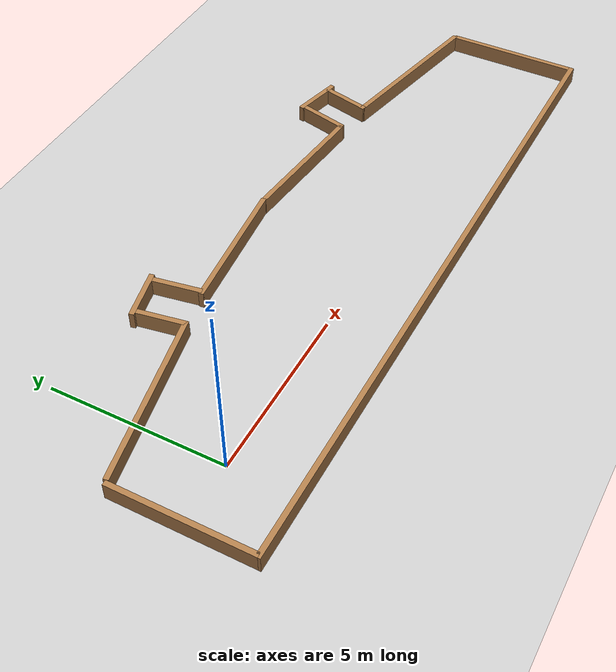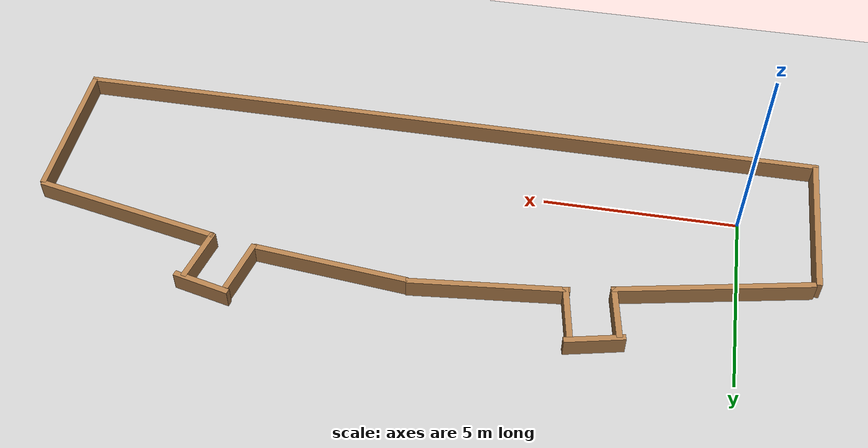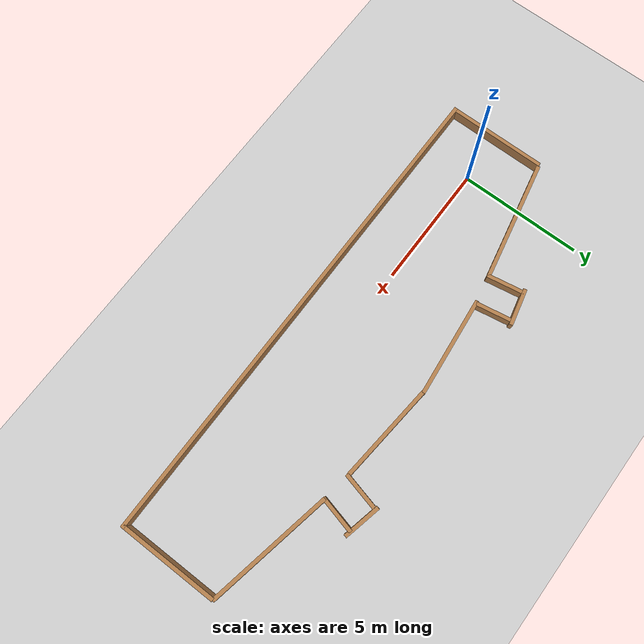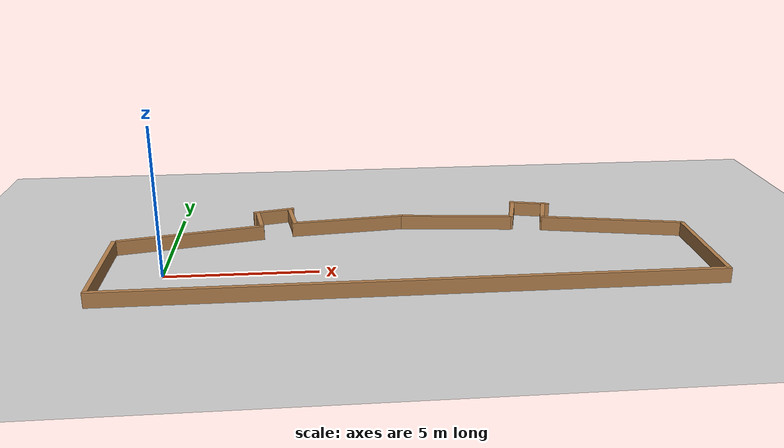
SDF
<sdf version='1.6'>
  <world name='default'>
    <!-- A global light source -->
    <include>
      <uri>model://sun</uri>
    </include>

    <!-- A ground plane -->
    <include>
      <uri>model://ground_plane</uri>
    </include>

    <physics type="ode">
      <real_time_update_rate>1000.0</real_time_update_rate>
      <max_step_size>0.001</max_step_size>
      <real_time_factor>1</real_time_factor>
      <ode>
        <solver>
          <type>quick</type>
          <iters>150</iters>
          <precon_iters>0</precon_iters>
          <sor>1.400000</sor>
          <use_dynamic_moi_rescaling>1</use_dynamic_moi_rescaling>
        </solver>
        <constraints>
          <cfm>0.00001</cfm>
          <erp>0.2</erp>
          <contact_max_correcting_vel>2000.000000</contact_max_correcting_vel>
          <contact_surface_layer>0.01000</contact_surface_layer>
        </constraints>
      </ode>
    </physics>

    <!-- Load world -->
    <include>
      <uri>model://sarl_map</uri>
    </include>

    <scene>
      <ambient>0.4 0.4 0.4 1</ambient>
      <background>0.7 0.7 0.7 1</background>
      <shadows>true</shadows>
    </scene>

    <gui fullscreen='0'>
      <camera name='user_camera'>
        <pose>0.0 0.0 17.0 0 1.5708 0</pose>
        <view_controller>orbit</view_controller>
      </camera>
    </gui>
  </world>
</sdf>

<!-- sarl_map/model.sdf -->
<sdf version='1.6'>
  <model name='sarl_map'>
    <link name='Wall_0'>
      <pose frame=''>0.6 2.5 0 0 -0 0.2</pose>
      <self_collide>0</self_collide>
      <enable_wind>0</enable_wind>
      <kinematic>0</kinematic>
      <gravity>1</gravity>
      <inertial>
        <mass>1</mass>
        <pose frame=''>0 0 0 0 -0 0</pose>
        <inertia>
          <ixx>1</ixx>
          <ixy>0</ixy>
          <ixz>0</ixz>
          <iyy>1</iyy>
          <iyz>0</iyz>
          <izz>1</izz>
        </inertia>
      </inertial>
      <visual name='Wall_0_Visual'>
        <pose frame=''>0 0 0.25 0 -0 0</pose>
        <geometry>
          <box>
            <size>5 0.15 0.5</size>
          </box>
        </geometry>
        <material>
          <script>
            <uri>file://media/materials/scripts/gazebo.material</uri>
            <name>Gazebo/Wood</name>
          </script>
          <ambient>1 1 1 1</ambient>
          <shader type='vertex'>
            <normal_map>__default__</normal_map>
          </shader>
          <diffuse>1 1 1 1</diffuse>
          <specular>0.2 0.2 0.2 1</specular>
          <emissive>0 0 0 1</emissive>
        </material>
        <transparency>0</transparency>
        <cast_shadows>1</cast_shadows>
      </visual>
      <collision name='Wall_0_Collision'>
        <laser_retro>0</laser_retro>
        <max_contacts>10</max_contacts>
        <pose frame=''>0 0 0.25 0 -0 0</pose>
        <geometry>
          <box>
            <size>5 0.15 0.5</size>
          </box>
        </geometry>
        <surface>
          <friction>
            <ode>
              <mu>1</mu>
              <mu2>1</mu2>
              <fdir1>0 0 0</fdir1>
              <slip1>0</slip1>
              <slip2>0</slip2>
            </ode>
            <torsional>
              <coefficient>1</coefficient>
              <patch_radius>0</patch_radius>
              <surface_radius>0</surface_radius>
              <use_patch_radius>1</use_patch_radius>
              <ode>
                <slip>0</slip>
              </ode>
            </torsional>
          </friction>
          <bounce>
            <restitution_coefficient>0</restitution_coefficient>
            <threshold>1e+06</threshold>
          </bounce>
          <contact>
            <collide_without_contact>0</collide_without_contact>
            <collide_without_contact_bitmask>1</collide_without_contact_bitmask>
            <collide_bitmask>1</collide_bitmask>
            <ode>
              <soft_cfm>0</soft_cfm>
              <soft_erp>0.2</soft_erp>
              <kp>1e+13</kp>
              <kd>1</kd>
              <max_vel>0.01</max_vel>
              <min_depth>0</min_depth>
            </ode>
            <bullet>
              <split_impulse>1</split_impulse>
              <split_impulse_penetration_threshold>-0.01</split_impulse_penetration_threshold>
              <soft_cfm>0</soft_cfm>
              <soft_erp>0.2</soft_erp>
              <kp>1e+13</kp>
              <kd>1</kd>
            </bullet>
          </contact>
        </surface>
      </collision>
    </link>
    <link name='Wall_0_clone'>
      <pose frame=''>6.02566 3.38497 0 0 -0 0.1</pose>
      <self_collide>0</self_collide>
      <enable_wind>0</enable_wind>
      <kinematic>0</kinematic>
      <gravity>1</gravity>
      <inertial>
        <mass>1</mass>
        <pose frame=''>0 0 0 0 -0 0</pose>
        <inertia>
          <ixx>1</ixx>
          <ixy>0</ixy>
          <ixz>0</ixz>
          <iyy>1</iyy>
          <iyz>0</iyz>
          <izz>1</izz>
        </inertia>
      </inertial>
      <visual name='Wall_0_Visual'>
        <pose frame=''>0 0 0.25 0 -0 0</pose>
        <geometry>
          <box>
            <size>4 0.15 0.5</size>
          </box>
        </geometry>
        <material>
          <script>
            <uri>file://media/materials/scripts/gazebo.material</uri>
            <name>Gazebo/Wood</name>
          </script>
          <ambient>1 1 1 1</ambient>
          <shader type='vertex'>
            <normal_map>__default__</normal_map>
          </shader>
          <diffuse>1 1 1 1</diffuse>
          <specular>0.2 0.2 0.2 1</specular>
          <emissive>0 0 0 1</emissive>
        </material>
        <transparency>0</transparency>
        <cast_shadows>1</cast_shadows>
      </visual>
      <collision name='Wall_0_Collision'>
        <laser_retro>0</laser_retro>
        <max_contacts>10</max_contacts>
        <pose frame=''>0 0 0.25 0 -0 0</pose>
        <geometry>
          <box>
            <size>4 0.15 0.5</size>
          </box>
        </geometry>
        <surface>
          <friction>
            <ode>
              <mu>1</mu>
              <mu2>1</mu2>
              <fdir1>0 0 0</fdir1>
              <slip1>0</slip1>
              <slip2>0</slip2>
            </ode>
            <torsional>
              <coefficient>1</coefficient>
              <patch_radius>0</patch_radius>
              <surface_radius>0</surface_radius>
              <use_patch_radius>1</use_patch_radius>
              <ode>
                <slip>0</slip>
              </ode>
            </torsional>
          </friction>
          <bounce>
            <restitution_coefficient>0</restitution_coefficient>
            <threshold>1e+06</threshold>
          </bounce>
          <contact>
            <collide_without_contact>0</collide_without_contact>
            <collide_without_contact_bitmask>1</collide_without_contact_bitmask>
            <collide_bitmask>1</collide_bitmask>
            <ode>
              <soft_cfm>0</soft_cfm>
              <soft_erp>0.2</soft_erp>
              <kp>1e+13</kp>
              <kd>1</kd>
              <max_vel>0.01</max_vel>
              <min_depth>0</min_depth>
            </ode>
            <bullet>
              <split_impulse>1</split_impulse>
              <split_impulse_penetration_threshold>-0.01</split_impulse_penetration_threshold>
              <soft_cfm>0</soft_cfm>
              <soft_erp>0.2</soft_erp>
              <kp>1e+13</kp>
              <kd>1</kd>
            </bullet>
          </contact>
        </surface>
      </collision>
    </link>
    <link name='Wall_0_clone_clone'>
      <pose frame=''>15.5 2.5 0 0 0 -0.2</pose>
      <self_collide>0</self_collide>
      <enable_wind>0</enable_wind>
      <kinematic>0</kinematic>
      <gravity>1</gravity>
      <inertial>
        <mass>1</mass>
        <pose frame=''>0 0 0 0 -0 0</pose>
        <inertia>
          <ixx>1</ixx>
          <ixy>0</ixy>
          <ixz>0</ixz>
          <iyy>1</iyy>
          <iyz>0</iyz>
          <izz>1</izz>
        </inertia>
      </inertial>
      <visual name='Wall_0_Visual'>
        <pose frame=''>0 0 0.25 0 -0 0</pose>
        <geometry>
          <box>
            <size>5 0.15 0.5</size>
          </box>
        </geometry>
        <material>
          <script>
            <uri>file://media/materials/scripts/gazebo.material</uri>
            <name>Gazebo/Wood</name>
          </script>
          <ambient>1 1 1 1</ambient>
          <shader type='vertex'>
            <normal_map>__default__</normal_map>
          </shader>
          <diffuse>1 1 1 1</diffuse>
          <specular>0.2 0.2 0.2 1</specular>
          <emissive>0 0 0 1</emissive>
        </material>
        <transparency>0</transparency>
        <cast_shadows>1</cast_shadows>
      </visual>
      <collision name='Wall_0_Collision'>
        <laser_retro>0</laser_retro>
        <max_contacts>10</max_contacts>
        <pose frame=''>0 0 0.25 0 -0 0</pose>
        <geometry>
          <box>
            <size>5 0.15 0.5</size>
          </box>
        </geometry>
        <surface>
          <friction>
            <ode>
              <mu>1</mu>
              <mu2>1</mu2>
              <fdir1>0 0 0</fdir1>
              <slip1>0</slip1>
              <slip2>0</slip2>
            </ode>
            <torsional>
              <coefficient>1</coefficient>
              <patch_radius>0</patch_radius>
              <surface_radius>0</surface_radius>
              <use_patch_radius>1</use_patch_radius>
              <ode>
                <slip>0</slip>
              </ode>
            </torsional>
          </friction>
          <bounce>
            <restitution_coefficient>0</restitution_coefficient>
            <threshold>1e+06</threshold>
          </bounce>
          <contact>
            <collide_without_contact>0</collide_without_contact>
            <collide_without_contact_bitmask>1</collide_without_contact_bitmask>
            <collide_bitmask>1</collide_bitmask>
            <ode>
              <soft_cfm>0</soft_cfm>
              <soft_erp>0.2</soft_erp>
              <kp>1e+13</kp>
              <kd>1</kd>
              <max_vel>0.01</max_vel>
              <min_depth>0</min_depth>
            </ode>
            <bullet>
              <split_impulse>1</split_impulse>
              <split_impulse_penetration_threshold>-0.01</split_impulse_penetration_threshold>
              <soft_cfm>0</soft_cfm>
              <soft_erp>0.2</soft_erp>
              <kp>1e+13</kp>
              <kd>1</kd>
            </bullet>
          </contact>
        </surface>
      </collision>
    </link>
    <link name='Wall_0_clone_clone_0'>
      <pose frame=''>9.95938 3.36639 0 0 0 -0.1</pose>
      <self_collide>0</self_collide>
      <enable_wind>0</enable_wind>
      <kinematic>0</kinematic>
      <gravity>1</gravity>
      <inertial>
        <mass>1</mass>
        <pose frame=''>0 0 0 0 -0 0</pose>
        <inertia>
          <ixx>1</ixx>
          <ixy>0</ixy>
          <ixz>0</ixz>
          <iyy>1</iyy>
          <iyz>0</iyz>
          <izz>1</izz>
        </inertia>
      </inertial>
      <visual name='Wall_0_Visual'>
        <pose frame=''>0 0 0.25 0 -0 0</pose>
        <geometry>
          <box>
            <size>4 0.15 0.5</size>
          </box>
        </geometry>
        <material>
          <script>
            <uri>file://media/materials/scripts/gazebo.material</uri>
            <name>Gazebo/Wood</name>
          </script>
          <ambient>1 1 1 1</ambient>
          <shader type='vertex'>
            <normal_map>__default__</normal_map>
          </shader>
          <diffuse>1 1 1 1</diffuse>
          <specular>0.2 0.2 0.2 1</specular>
          <emissive>0 0 0 1</emissive>
        </material>
        <transparency>0</transparency>
        <cast_shadows>1</cast_shadows>
      </visual>
      <collision name='Wall_0_Collision'>
        <laser_retro>0</laser_retro>
        <max_contacts>10</max_contacts>
        <pose frame=''>0 0 0.25 0 -0 0</pose>
        <geometry>
          <box>
            <size>4 0.15 0.5</size>
          </box>
        </geometry>
        <surface>
          <friction>
            <ode>
              <mu>1</mu>
              <mu2>1</mu2>
              <fdir1>0 0 0</fdir1>
              <slip1>0</slip1>
              <slip2>0</slip2>
            </ode>
            <torsional>
              <coefficient>1</coefficient>
              <patch_radius>0</patch_radius>
              <surface_radius>0</surface_radius>
              <use_patch_radius>1</use_patch_radius>
              <ode>
                <slip>0</slip>
              </ode>
            </torsional>
          </friction>
          <bounce>
            <restitution_coefficient>0</restitution_coefficient>
            <threshold>1e+06</threshold>
          </bounce>
          <contact>
            <collide_without_contact>0</collide_without_contact>
            <collide_without_contact_bitmask>1</collide_without_contact_bitmask>
            <collide_bitmask>1</collide_bitmask>
            <ode>
              <soft_cfm>0</soft_cfm>
              <soft_erp>0.2</soft_erp>
              <kp>1e+13</kp>
              <kd>1</kd>
              <max_vel>0.01</max_vel>
              <min_depth>0</min_depth>
            </ode>
            <bullet>
              <split_impulse>1</split_impulse>
              <split_impulse_penetration_threshold>-0.01</split_impulse_penetration_threshold>
              <soft_cfm>0</soft_cfm>
              <soft_erp>0.2</soft_erp>
              <kp>1e+13</kp>
              <kd>1</kd>
            </bullet>
          </contact>
        </surface>
      </collision>
    </link>
    <link name='Wall_0_clone_clone_0_clone'>
      <pose frame=''>4.03095 3.86036 0 0 0 -1.40434</pose>
      <self_collide>0</self_collide>
      <enable_wind>0</enable_wind>
      <kinematic>0</kinematic>
      <gravity>1</gravity>
      <inertial>
        <mass>0.371932</mass>
        <pose frame=''>0 0 0 0 -0 0</pose>
        <inertia>
          <ixx>0.00844595</ixx>
          <ixy>0</ixy>
          <ixz>0</ixz>
          <iyy>0.0763497</iyy>
          <iyz>0</iyz>
          <izz>0.0692985</izz>
        </inertia>
      </inertial>
      <visual name='Wall_0_Visual'>
        <pose frame=''>0 0 0.25 0 -0 0</pose>
        <geometry>
          <box>
            <size>1.48773 0.15 0.5</size>
          </box>
        </geometry>
        <material>
          <script>
            <uri>file://media/materials/scripts/gazebo.material</uri>
            <name>Gazebo/Wood</name>
          </script>
          <ambient>1 1 1 1</ambient>
          <shader type='vertex'>
            <normal_map>__default__</normal_map>
          </shader>
          <diffuse>1 1 1 1</diffuse>
          <specular>0.2 0.2 0.2 1</specular>
          <emissive>0 0 0 1</emissive>
        </material>
        <transparency>0</transparency>
        <cast_shadows>1</cast_shadows>
      </visual>
      <collision name='Wall_0_Collision'>
        <laser_retro>0</laser_retro>
        <max_contacts>10</max_contacts>
        <pose frame=''>0 0 0.25 0 -0 0</pose>
        <geometry>
          <box>
            <size>1.48773 0.15 0.5</size>
          </box>
        </geometry>
        <surface>
          <friction>
            <ode>
              <mu>1</mu>
              <mu2>1</mu2>
              <fdir1>0 0 0</fdir1>
              <slip1>0</slip1>
              <slip2>0</slip2>
            </ode>
            <torsional>
              <coefficient>1</coefficient>
              <patch_radius>0</patch_radius>
              <surface_radius>0</surface_radius>
              <use_patch_radius>1</use_patch_radius>
              <ode>
                <slip>0</slip>
              </ode>
            </torsional>
          </friction>
          <bounce>
            <restitution_coefficient>0</restitution_coefficient>
            <threshold>1e+06</threshold>
          </bounce>
          <contact>
            <collide_without_contact>0</collide_without_contact>
            <collide_without_contact_bitmask>1</collide_without_contact_bitmask>
            <collide_bitmask>1</collide_bitmask>
            <ode>
              <soft_cfm>0</soft_cfm>
              <soft_erp>0.2</soft_erp>
              <kp>1e+13</kp>
              <kd>1</kd>
              <max_vel>0.01</max_vel>
              <min_depth>0</min_depth>
            </ode>
            <bullet>
              <split_impulse>1</split_impulse>
              <split_impulse_penetration_threshold>-0.01</split_impulse_penetration_threshold>
              <soft_cfm>0</soft_cfm>
              <soft_erp>0.2</soft_erp>
              <kp>1e+13</kp>
              <kd>1</kd>
            </bullet>
          </contact>
        </surface>
      </collision>
    </link>
    <link name='Wall_0_clone_clone_0_clone_clone'>
      <pose frame=''>2.87095 3.66233 0 0 0 -1.40434</pose>
      <self_collide>0</self_collide>
      <enable_wind>0</enable_wind>
      <kinematic>0</kinematic>
      <gravity>1</gravity>
      <inertial>
        <mass>0.371932</mass>
        <pose frame=''>0 0 0 0 -0 0</pose>
        <inertia>
          <ixx>0.00844595</ixx>
          <ixy>0</ixy>
          <ixz>0</ixz>
          <iyy>0.0763497</iyy>
          <iyz>0</iyz>
          <izz>0.0692985</izz>
        </inertia>
      </inertial>
      <visual name='Wall_0_Visual'>
        <pose frame=''>0 0 0.25 0 -0 0</pose>
        <geometry>
          <box>
            <size>1.48773 0.15 0.5</size>
          </box>
        </geometry>
        <material>
          <script>
            <uri>file://media/materials/scripts/gazebo.material</uri>
            <name>Gazebo/Wood</name>
          </script>
          <ambient>1 1 1 1</ambient>
          <shader type='vertex'>
            <normal_map>__default__</normal_map>
          </shader>
          <diffuse>1 1 1 1</diffuse>
          <specular>0.2 0.2 0.2 1</specular>
          <emissive>0 0 0 1</emissive>
        </material>
        <transparency>0</transparency>
        <cast_shadows>1</cast_shadows>
      </visual>
      <collision name='Wall_0_Collision'>
        <laser_retro>0</laser_retro>
        <max_contacts>10</max_contacts>
        <pose frame=''>0 0 0.25 0 -0 0</pose>
        <geometry>
          <box>
            <size>1.48773 0.15 0.5</size>
          </box>
        </geometry>
        <surface>
          <friction>
            <ode>
              <mu>1</mu>
              <mu2>1</mu2>
              <fdir1>0 0 0</fdir1>
              <slip1>0</slip1>
              <slip2>0</slip2>
            </ode>
            <torsional>
              <coefficient>1</coefficient>
              <patch_radius>0</patch_radius>
              <surface_radius>0</surface_radius>
              <use_patch_radius>1</use_patch_radius>
              <ode>
                <slip>0</slip>
              </ode>
            </torsional>
          </friction>
          <bounce>
            <restitution_coefficient>0</restitution_coefficient>
            <threshold>1e+06</threshold>
          </bounce>
          <contact>
            <collide_without_contact>0</collide_without_contact>
            <collide_without_contact_bitmask>1</collide_without_contact_bitmask>
            <collide_bitmask>1</collide_bitmask>
            <ode>
              <soft_cfm>0</soft_cfm>
              <soft_erp>0.2</soft_erp>
              <kp>1e+13</kp>
              <kd>1</kd>
              <max_vel>0.01</max_vel>
              <min_depth>0</min_depth>
            </ode>
            <bullet>
              <split_impulse>1</split_impulse>
              <split_impulse_penetration_threshold>-0.01</split_impulse_penetration_threshold>
              <soft_cfm>0</soft_cfm>
              <soft_erp>0.2</soft_erp>
              <kp>1e+13</kp>
              <kd>1</kd>
            </bullet>
          </contact>
        </surface>
      </collision>
    </link>
    <link name='Wall_0_clone_clone_0_clone_clone_clone'>
      <pose frame=''>3.32345 4.53022 0 0 0 -2.91601</pose>
      <self_collide>0</self_collide>
      <enable_wind>0</enable_wind>
      <kinematic>0</kinematic>
      <gravity>1</gravity>
      <inertial>
        <mass>0.371932</mass>
        <pose frame=''>0 0 0 0 -0 0</pose>
        <inertia>
          <ixx>0.00844595</ixx>
          <ixy>0</ixy>
          <ixz>0</ixz>
          <iyy>0.0763497</iyy>
          <iyz>0</iyz>
          <izz>0.0692985</izz>
        </inertia>
      </inertial>
      <visual name='Wall_0_Visual'>
        <pose frame=''>0 0 0.25 0 -0 0</pose>
        <geometry>
          <box>
            <size>1.48773 0.15 0.5</size>
          </box>
        </geometry>
        <material>
          <script>
            <uri>file://media/materials/scripts/gazebo.material</uri>
            <name>Gazebo/Wood</name>
          </script>
          <ambient>1 1 1 1</ambient>
          <shader type='vertex'>
            <normal_map>__default__</normal_map>
          </shader>
          <diffuse>1 1 1 1</diffuse>
          <specular>0.2 0.2 0.2 1</specular>
          <emissive>0 0 0 1</emissive>
        </material>
        <transparency>0</transparency>
        <cast_shadows>1</cast_shadows>
      </visual>
      <collision name='Wall_0_Collision'>
        <laser_retro>0</laser_retro>
        <max_contacts>10</max_contacts>
        <pose frame=''>0 0 0.25 0 -0 0</pose>
        <geometry>
          <box>
            <size>1.48773 0.15 0.5</size>
          </box>
        </geometry>
        <surface>
          <friction>
            <ode>
              <mu>1</mu>
              <mu2>1</mu2>
              <fdir1>0 0 0</fdir1>
              <slip1>0</slip1>
              <slip2>0</slip2>
            </ode>
            <torsional>
              <coefficient>1</coefficient>
              <patch_radius>0</patch_radius>
              <surface_radius>0</surface_radius>
              <use_patch_radius>1</use_patch_radius>
              <ode>
                <slip>0</slip>
              </ode>
            </torsional>
          </friction>
          <bounce>
            <restitution_coefficient>0</restitution_coefficient>
            <threshold>1e+06</threshold>
          </bounce>
          <contact>
            <collide_without_contact>0</collide_without_contact>
            <collide_without_contact_bitmask>1</collide_without_contact_bitmask>
            <collide_bitmask>1</collide_bitmask>
            <ode>
              <soft_cfm>0</soft_cfm>
              <soft_erp>0.2</soft_erp>
              <kp>1e+13</kp>
              <kd>1</kd>
              <max_vel>0.01</max_vel>
              <min_depth>0</min_depth>
            </ode>
            <bullet>
              <split_impulse>1</split_impulse>
              <split_impulse_penetration_threshold>-0.01</split_impulse_penetration_threshold>
              <soft_cfm>0</soft_cfm>
              <soft_erp>0.2</soft_erp>
              <kp>1e+13</kp>
              <kd>1</kd>
            </bullet>
          </contact>
        </surface>
      </collision>
    </link>
    <link name='Wall_0_clone_clone_0_clone_clone_clone_0'>
      <pose frame=''>13.2345 3.65988 0 0 0 -1.80432</pose>
      <self_collide>0</self_collide>
      <enable_wind>0</enable_wind>
      <kinematic>0</kinematic>
      <gravity>1</gravity>
      <inertial>
        <mass>0.371932</mass>
        <pose frame=''>0 0 0 0 -0 0</pose>
        <inertia>
          <ixx>0.00844595</ixx>
          <ixy>0</ixy>
          <ixz>0</ixz>
          <iyy>0.0763497</iyy>
          <iyz>0</iyz>
          <izz>0.0692985</izz>
        </inertia>
      </inertial>
      <visual name='Wall_0_Visual'>
        <pose frame=''>0 0 0.25 0 -0 0</pose>
        <geometry>
          <box>
            <size>1.48773 0.15 0.5</size>
          </box>
        </geometry>
        <material>
          <script>
            <uri>file://media/materials/scripts/gazebo.material</uri>
            <name>Gazebo/Wood</name>
          </script>
          <ambient>1 1 1 1</ambient>
          <shader type='vertex'>
            <normal_map>__default__</normal_map>
          </shader>
          <diffuse>1 1 1 1</diffuse>
          <specular>0.2 0.2 0.2 1</specular>
          <emissive>0 0 0 1</emissive>
        </material>
        <transparency>0</transparency>
        <cast_shadows>1</cast_shadows>
      </visual>
      <collision name='Wall_0_Collision'>
        <laser_retro>0</laser_retro>
        <max_contacts>10</max_contacts>
        <pose frame=''>0 0 0.25 0 -0 0</pose>
        <geometry>
          <box>
            <size>1.48773 0.15 0.5</size>
          </box>
        </geometry>
        <surface>
          <friction>
            <ode>
              <mu>1</mu>
              <mu2>1</mu2>
              <fdir1>0 0 0</fdir1>
              <slip1>0</slip1>
              <slip2>0</slip2>
            </ode>
            <torsional>
              <coefficient>1</coefficient>
              <patch_radius>0</patch_radius>
              <surface_radius>0</surface_radius>
              <use_patch_radius>1</use_patch_radius>
              <ode>
                <slip>0</slip>
              </ode>
            </torsional>
          </friction>
          <bounce>
            <restitution_coefficient>0</restitution_coefficient>
            <threshold>1e+06</threshold>
          </bounce>
          <contact>
            <collide_without_contact>0</collide_without_contact>
            <collide_without_contact_bitmask>1</collide_without_contact_bitmask>
            <collide_bitmask>1</collide_bitmask>
            <ode>
              <soft_cfm>0</soft_cfm>
              <soft_erp>0.2</soft_erp>
              <kp>1e+13</kp>
              <kd>1</kd>
              <max_vel>0.01</max_vel>
              <min_depth>0</min_depth>
            </ode>
            <bullet>
              <split_impulse>1</split_impulse>
              <split_impulse_penetration_threshold>-0.01</split_impulse_penetration_threshold>
              <soft_cfm>0</soft_cfm>
              <soft_erp>0.2</soft_erp>
              <kp>1e+13</kp>
              <kd>1</kd>
            </bullet>
          </contact>
        </surface>
      </collision>
    </link>
    <link name='Wall_0_clone_clone_0_clone_clone_clone_0_clone'>
      <pose frame=''>12.1179 3.83663 0 0 0 -1.80432</pose>
      <self_collide>0</self_collide>
      <enable_wind>0</enable_wind>
      <kinematic>0</kinematic>
      <gravity>1</gravity>
      <inertial>
        <mass>0.371932</mass>
        <pose frame=''>0 0 0 0 -0 0</pose>
        <inertia>
          <ixx>0.00844595</ixx>
          <ixy>0</ixy>
          <ixz>0</ixz>
          <iyy>0.0763497</iyy>
          <iyz>0</iyz>
          <izz>0.0692985</izz>
        </inertia>
      </inertial>
      <visual name='Wall_0_Visual'>
        <pose frame=''>0 0 0.25 0 -0 0</pose>
        <geometry>
          <box>
            <size>1.48773 0.15 0.5</size>
          </box>
        </geometry>
        <material>
          <script>
            <uri>file://media/materials/scripts/gazebo.material</uri>
            <name>Gazebo/Wood</name>
          </script>
          <ambient>1 1 1 1</ambient>
          <shader type='vertex'>
            <normal_map>__default__</normal_map>
          </shader>
          <diffuse>1 1 1 1</diffuse>
          <specular>0.2 0.2 0.2 1</specular>
          <emissive>0 0 0 1</emissive>
        </material>
        <transparency>0</transparency>
        <cast_shadows>1</cast_shadows>
      </visual>
      <collision name='Wall_0_Collision'>
        <laser_retro>0</laser_retro>
        <max_contacts>10</max_contacts>
        <pose frame=''>0 0 0.25 0 -0 0</pose>
        <geometry>
          <box>
            <size>1.48773 0.15 0.5</size>
          </box>
        </geometry>
        <surface>
          <friction>
            <ode>
              <mu>1</mu>
              <mu2>1</mu2>
              <fdir1>0 0 0</fdir1>
              <slip1>0</slip1>
              <slip2>0</slip2>
            </ode>
            <torsional>
              <coefficient>1</coefficient>
              <patch_radius>0</patch_radius>
              <surface_radius>0</surface_radius>
              <use_patch_radius>1</use_patch_radius>
              <ode>
                <slip>0</slip>
              </ode>
            </torsional>
          </friction>
          <bounce>
            <restitution_coefficient>0</restitution_coefficient>
            <threshold>1e+06</threshold>
          </bounce>
          <contact>
            <collide_without_contact>0</collide_without_contact>
            <collide_without_contact_bitmask>1</collide_without_contact_bitmask>
            <collide_bitmask>1</collide_bitmask>
            <ode>
              <soft_cfm>0</soft_cfm>
              <soft_erp>0.2</soft_erp>
              <kp>1e+13</kp>
              <kd>1</kd>
              <max_vel>0.01</max_vel>
              <min_depth>0</min_depth>
            </ode>
            <bullet>
              <split_impulse>1</split_impulse>
              <split_impulse_penetration_threshold>-0.01</split_impulse_penetration_threshold>
              <soft_cfm>0</soft_cfm>
              <soft_erp>0.2</soft_erp>
              <kp>1e+13</kp>
              <kd>1</kd>
            </bullet>
          </contact>
        </surface>
      </collision>
    </link>
    <link name='Wall_0_clone_clone_0_clone_clone_clone_0_clone_0'>
      <pose frame=''>12.9169 4.49384 0 0 -0 2.91114</pose>
      <self_collide>0</self_collide>
      <enable_wind>0</enable_wind>
      <kinematic>0</kinematic>
      <gravity>1</gravity>
      <inertial>
        <mass>0.371932</mass>
        <pose frame=''>0 0 0 0 -0 0</pose>
        <inertia>
          <ixx>0.00844595</ixx>
          <ixy>0</ixy>
          <ixz>0</ixz>
          <iyy>0.0763497</iyy>
          <iyz>0</iyz>
          <izz>0.0692985</izz>
        </inertia>
      </inertial>
      <visual name='Wall_0_Visual'>
        <pose frame=''>0 0 0.25 0 -0 0</pose>
        <geometry>
          <box>
            <size>1.48773 0.15 0.5</size>
          </box>
        </geometry>
        <material>
          <script>
            <uri>file://media/materials/scripts/gazebo.material</uri>
            <name>Gazebo/Wood</name>
          </script>
          <ambient>1 1 1 1</ambient>
          <shader type='vertex'>
            <normal_map>__default__</normal_map>
          </shader>
          <diffuse>1 1 1 1</diffuse>
          <specular>0.2 0.2 0.2 1</specular>
          <emissive>0 0 0 1</emissive>
        </material>
        <transparency>0</transparency>
        <cast_shadows>1</cast_shadows>
      </visual>
      <collision name='Wall_0_Collision'>
        <laser_retro>0</laser_retro>
        <max_contacts>10</max_contacts>
        <pose frame=''>0 0 0.25 0 -0 0</pose>
        <geometry>
          <box>
            <size>1.48773 0.15 0.5</size>
          </box>
        </geometry>
        <surface>
          <friction>
            <ode>
              <mu>1</mu>
              <mu2>1</mu2>
              <fdir1>0 0 0</fdir1>
              <slip1>0</slip1>
              <slip2>0</slip2>
            </ode>
            <torsional>
              <coefficient>1</coefficient>
              <patch_radius>0</patch_radius>
              <surface_radius>0</surface_radius>
              <use_patch_radius>1</use_patch_radius>
              <ode>
                <slip>0</slip>
              </ode>
            </torsional>
          </friction>
          <bounce>
            <restitution_coefficient>0</restitution_coefficient>
            <threshold>1e+06</threshold>
          </bounce>
          <contact>
            <collide_without_contact>0</collide_without_contact>
            <collide_without_contact_bitmask>1</collide_without_contact_bitmask>
            <collide_bitmask>1</collide_bitmask>
            <ode>
              <soft_cfm>0</soft_cfm>
              <soft_erp>0.2</soft_erp>
              <kp>1e+13</kp>
              <kd>1</kd>
              <max_vel>0.01</max_vel>
              <min_depth>0</min_depth>
            </ode>
            <bullet>
              <split_impulse>1</split_impulse>
              <split_impulse_penetration_threshold>-0.01</split_impulse_penetration_threshold>
              <soft_cfm>0</soft_cfm>
              <soft_erp>0.2</soft_erp>
              <kp>1e+13</kp>
              <kd>1</kd>
            </bullet>
          </contact>
        </surface>
      </collision>
    </link>
    <link name='Wall_2'>
      <pose frame=''>-1.925 0 0 0 0 -1.5708</pose>
      <self_collide>0</self_collide>
      <enable_wind>0</enable_wind>
      <kinematic>0</kinematic>
      <gravity>1</gravity>
      <inertial>
        <mass>1</mass>
        <pose frame=''>0 0 0 0 -0 0</pose>
        <inertia>
          <ixx>1</ixx>
          <ixy>0</ixy>
          <ixz>0</ixz>
          <iyy>1</iyy>
          <iyz>0</iyz>
          <izz>1</izz>
        </inertia>
      </inertial>
      <visual name='Wall_2_Visual'>
        <pose frame=''>0 0 0.25 0 -0 0</pose>
        <geometry>
          <box>
            <size>4 0.15 0.5</size>
          </box>
        </geometry>
        <material>
          <script>
            <uri>file://media/materials/scripts/gazebo.material</uri>
            <name>Gazebo/Wood</name>
          </script>
          <ambient>1 1 1 1</ambient>
          <shader type='vertex'>
            <normal_map>__default__</normal_map>
          </shader>
          <diffuse>1 1 1 1</diffuse>
          <specular>0.2 0.2 0.2 1</specular>
          <emissive>0 0 0 1</emissive>
        </material>
        <transparency>0</transparency>
        <cast_shadows>1</cast_shadows>
      </visual>
      <collision name='Wall_2_Collision'>
        <laser_retro>0</laser_retro>
        <max_contacts>10</max_contacts>
        <pose frame=''>0 0 0.25 0 -0 0</pose>
        <geometry>
          <box>
            <size>4 0.15 0.5</size>
          </box>
        </geometry>
        <surface>
          <friction>
            <ode>
              <mu>1</mu>
              <mu2>1</mu2>
              <fdir1>0 0 0</fdir1>
              <slip1>0</slip1>
              <slip2>0</slip2>
            </ode>
            <torsional>
              <coefficient>1</coefficient>
              <patch_radius>0</patch_radius>
              <surface_radius>0</surface_radius>
              <use_patch_radius>1</use_patch_radius>
              <ode>
                <slip>0</slip>
              </ode>
            </torsional>
          </friction>
          <bounce>
            <restitution_coefficient>0</restitution_coefficient>
            <threshold>1e+06</threshold>
          </bounce>
          <contact>
            <collide_without_contact>0</collide_without_contact>
            <collide_without_contact_bitmask>1</collide_without_contact_bitmask>
            <collide_bitmask>1</collide_bitmask>
            <ode>
              <soft_cfm>0</soft_cfm>
              <soft_erp>0.2</soft_erp>
              <kp>1e+13</kp>
              <kd>1</kd>
              <max_vel>0.01</max_vel>
              <min_depth>0</min_depth>
            </ode>
            <bullet>
              <split_impulse>1</split_impulse>
              <split_impulse_penetration_threshold>-0.01</split_impulse_penetration_threshold>
              <soft_cfm>0</soft_cfm>
              <soft_erp>0.2</soft_erp>
              <kp>1e+13</kp>
              <kd>1</kd>
            </bullet>
          </contact>
        </surface>
      </collision>
    </link>
    <link name='Wall_3'>
      <pose frame=''>8 -2 0 0 -0 0</pose>
      <self_collide>0</self_collide>
      <enable_wind>0</enable_wind>
      <kinematic>0</kinematic>
      <gravity>1</gravity>
      <inertial>
        <mass>1</mass>
        <pose frame=''>0 0 0 0 -0 0</pose>
        <inertia>
          <ixx>1</ixx>
          <ixy>0</ixy>
          <ixz>0</ixz>
          <iyy>1</iyy>
          <iyz>0</iyz>
          <izz>1</izz>
        </inertia>
      </inertial>
      <visual name='Wall_3_Visual'>
        <pose frame=''>0 0 0.25 0 -0 0</pose>
        <geometry>
          <box>
            <size>20 0.15 0.5</size>
          </box>
        </geometry>
        <material>
          <script>
            <uri>file://media/materials/scripts/gazebo.material</uri>
            <name>Gazebo/Wood</name>
          </script>
          <ambient>1 1 1 1</ambient>
          <shader type='vertex'>
            <normal_map>__default__</normal_map>
          </shader>
          <diffuse>1 1 1 1</diffuse>
          <specular>0.2 0.2 0.2 1</specular>
          <emissive>0 0 0 1</emissive>
        </material>
        <transparency>0</transparency>
        <cast_shadows>1</cast_shadows>
      </visual>
      <collision name='Wall_3_Collision'>
        <laser_retro>0</laser_retro>
        <max_contacts>10</max_contacts>
        <pose frame=''>0 0 0.25 0 -0 0</pose>
        <geometry>
          <box>
            <size>20 0.15 0.5</size>
          </box>
        </geometry>
        <surface>
          <friction>
            <ode>
              <mu>1</mu>
              <mu2>1</mu2>
              <fdir1>0 0 0</fdir1>
              <slip1>0</slip1>
              <slip2>0</slip2>
            </ode>
            <torsional>
              <coefficient>1</coefficient>
              <patch_radius>0</patch_radius>
              <surface_radius>0</surface_radius>
              <use_patch_radius>1</use_patch_radius>
              <ode>
                <slip>0</slip>
              </ode>
            </torsional>
          </friction>
          <bounce>
            <restitution_coefficient>0</restitution_coefficient>
            <threshold>1e+06</threshold>
          </bounce>
          <contact>
            <collide_without_contact>0</collide_without_contact>
            <collide_without_contact_bitmask>1</collide_without_contact_bitmask>
            <collide_bitmask>1</collide_bitmask>
            <ode>
              <soft_cfm>0</soft_cfm>
              <soft_erp>0.2</soft_erp>
              <kp>1e+13</kp>
              <kd>1</kd>
              <max_vel>0.01</max_vel>
              <min_depth>0</min_depth>
            </ode>
            <bullet>
              <split_impulse>1</split_impulse>
              <split_impulse_penetration_threshold>-0.01</split_impulse_penetration_threshold>
              <soft_cfm>0</soft_cfm>
              <soft_erp>0.2</soft_erp>
              <kp>1e+13</kp>
              <kd>1</kd>
            </bullet>
          </contact>
        </surface>
      </collision>
    </link>
    <link name='Wall_4'>
      <pose frame=''>17.925 0 0 0 -0 1.5708</pose>
      <self_collide>0</self_collide>
      <enable_wind>0</enable_wind>
      <kinematic>0</kinematic>
      <gravity>1</gravity>
      <inertial>
        <mass>1</mass>
        <pose frame=''>0 0 0 0 -0 0</pose>
        <inertia>
          <ixx>1</ixx>
          <ixy>0</ixy>
          <ixz>0</ixz>
          <iyy>1</iyy>
          <iyz>0</iyz>
          <izz>1</izz>
        </inertia>
      </inertial>
      <visual name='Wall_4_Visual'>
        <pose frame=''>0 0 0.25 0 -0 0</pose>
        <geometry>
          <box>
            <size>4 0.15 0.5</size>
          </box>
        </geometry>
        <material>
          <script>
            <uri>file://media/materials/scripts/gazebo.material</uri>
            <name>Gazebo/Wood</name>
          </script>
          <ambient>1 1 1 1</ambient>
          <shader type='vertex'>
            <normal_map>__default__</normal_map>
          </shader>
          <diffuse>1 1 1 1</diffuse>
          <specular>0.2 0.2 0.2 1</specular>
          <emissive>0 0 0 1</emissive>
        </material>
        <transparency>0</transparency>
        <cast_shadows>1</cast_shadows>
      </visual>
      <collision name='Wall_4_Collision'>
        <laser_retro>0</laser_retro>
        <max_contacts>10</max_contacts>
        <pose frame=''>0 0 0.25 0 -0 0</pose>
        <geometry>
          <box>
            <size>4 0.15 0.5</size>
          </box>
        </geometry>
        <surface>
          <friction>
            <ode>
              <mu>1</mu>
              <mu2>1</mu2>
              <fdir1>0 0 0</fdir1>
              <slip1>0</slip1>
              <slip2>0</slip2>
            </ode>
            <torsional>
              <coefficient>1</coefficient>
              <patch_radius>0</patch_radius>
              <surface_radius>0</surface_radius>
              <use_patch_radius>1</use_patch_radius>
              <ode>
                <slip>0</slip>
              </ode>
            </torsional>
          </friction>
          <bounce>
            <restitution_coefficient>0</restitution_coefficient>
            <threshold>1e+06</threshold>
          </bounce>
          <contact>
            <collide_without_contact>0</collide_without_contact>
            <collide_without_contact_bitmask>1</collide_without_contact_bitmask>
            <collide_bitmask>1</collide_bitmask>
            <ode>
              <soft_cfm>0</soft_cfm>
              <soft_erp>0.2</soft_erp>
              <kp>1e+13</kp>
              <kd>1</kd>
              <max_vel>0.01</max_vel>
              <min_depth>0</min_depth>
            </ode>
            <bullet>
              <split_impulse>1</split_impulse>
              <split_impulse_penetration_threshold>-0.01</split_impulse_penetration_threshold>
              <soft_cfm>0</soft_cfm>
              <soft_erp>0.2</soft_erp>
              <kp>1e+13</kp>
              <kd>1</kd>
            </bullet>
          </contact>
        </surface>
      </collision>
    </link>
    <static>1</static>
    <allow_auto_disable>1</allow_auto_disable>
  </model>
</sdf>
